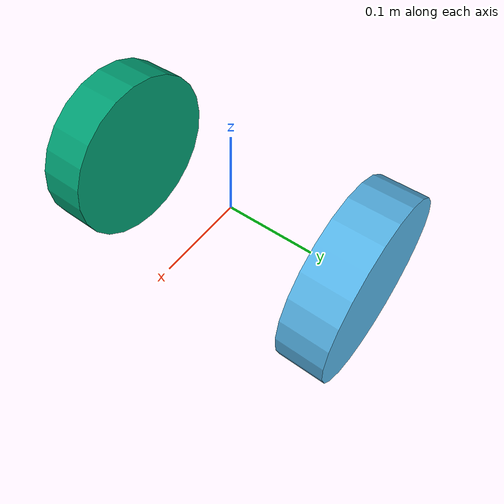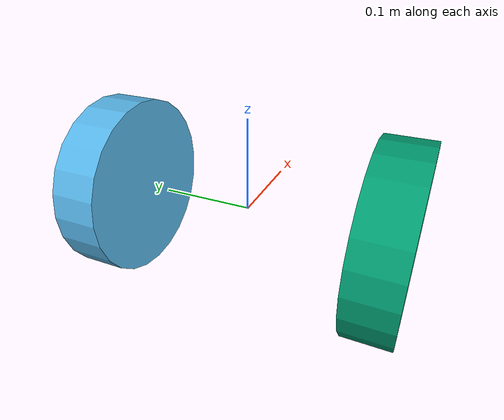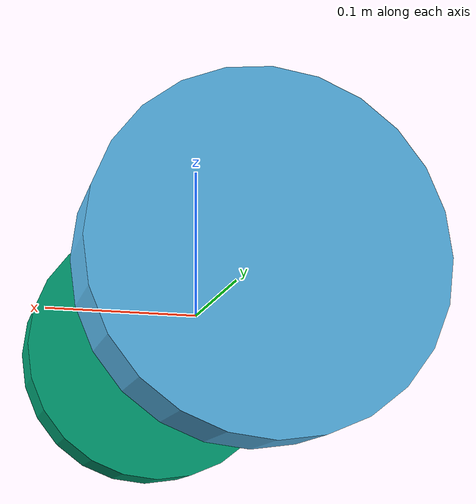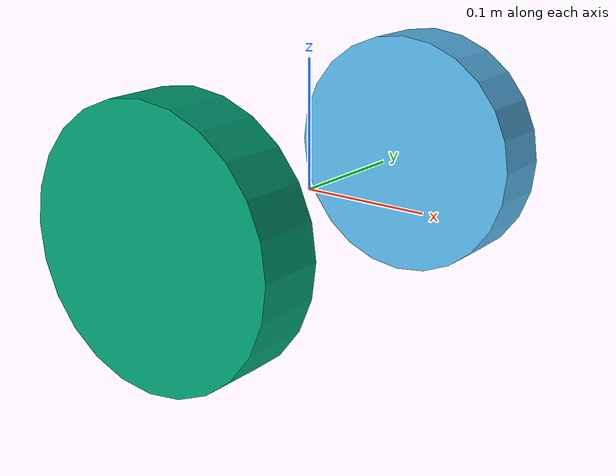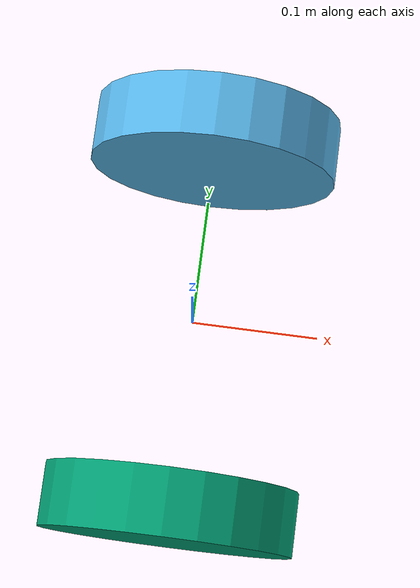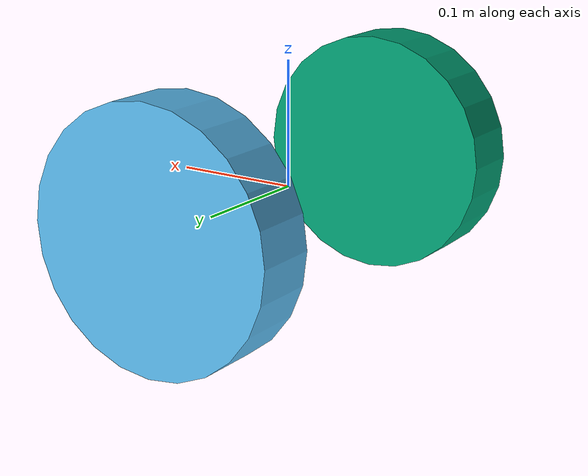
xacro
<?xml version="1.0"?>
<robot name="xacro_prop_bot" xmlns:xacro="http://www.ros.org/wiki/xacro">
  <xacro:property name="wheel_radius" value="0.1"/>
  <xacro:property name="wheel_width" value="0.05"/>

  <link name="base_link"/>
  <link name="left_wheel">
    <visual>
      <geometry>
        <cylinder radius="${wheel_radius}" length="${wheel_width}"/>
      </geometry>
    </visual>
  </link>
  <link name="right_wheel">
    <visual>
      <geometry>
        <cylinder radius="${wheel_radius}" length="${wheel_width}"/>
      </geometry>
    </visual>
  </link>

  <joint name="left_wheel_joint" type="continuous">
    <parent link="base_link"/>
    <child link="left_wheel"/>
    <origin xyz="0 0.15 0" rpy="1.5707963 0 0"/>
    <axis xyz="0 0 1"/>
  </joint>
  <joint name="right_wheel_joint" type="continuous">
    <parent link="base_link"/>
    <child link="right_wheel"/>
    <origin xyz="0 -0.15 0" rpy="1.5707963 0 0"/>
    <axis xyz="0 0 1"/>
  </joint>
</robot>
